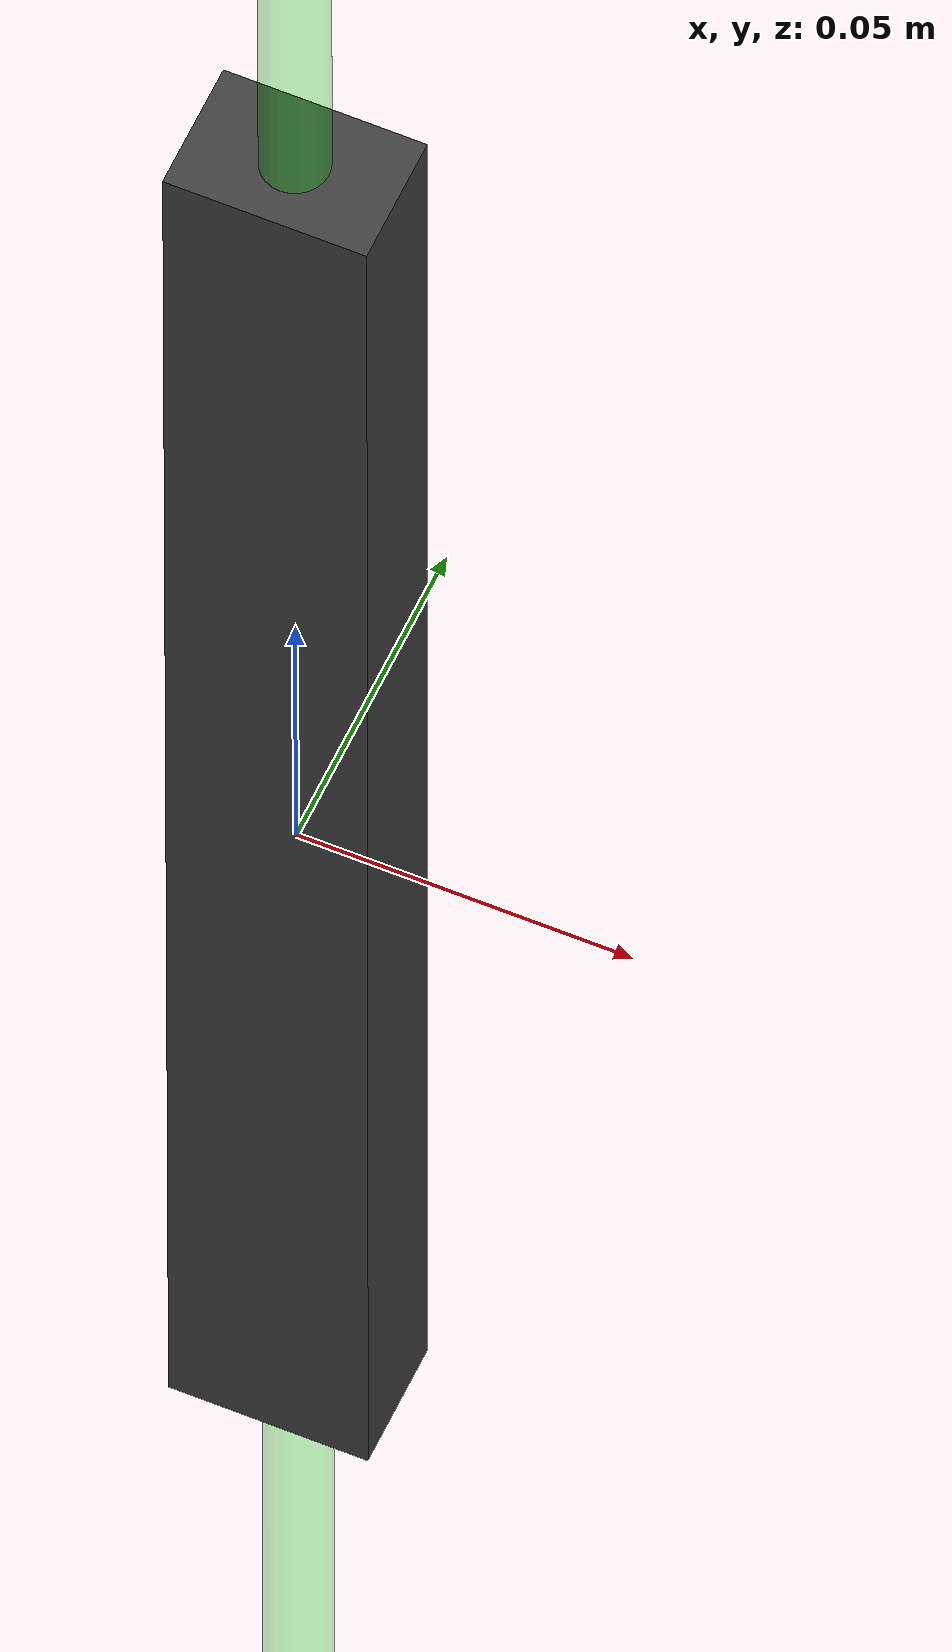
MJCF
<mujoco model="box_hand">
    <worldbody>
        <body name="box_gripper" pos="0 0 0.015" quat="0.707107 0 0 -0.707107" >
            <site name="ft_frame" pos="0 0 0" size="0.01 0.01 0.01" rgba="1 0 0 1" type="sphere" group="1"/>
            <inertial pos="0 0 0" mass="1.3" diaginertia="0.09 0.07 0.05"/>

            <geom type="box" pos="0 0 0.0" size="0.01 0.015 0.145" name="wiping_surface_vis" contype="0" conaffinity="0" group="1" rgba="0.25 0.25 0.25 1" />

            <geom type="sphere" group="0" pos="0.005 0.0075 0.045" size="0.001" name="wiping_corner1" solimp="0.0 0.1 0.01" solmix="10000" solref="1 2" rgba="0.25 0.25 0.25 1" friction="0.001 0.005 0.0001"/>
            <site type="sphere" pos="0.005 0.0075 0.045" size="0.001" name="wiping_corner1_site"/>

            <geom type="sphere" group="0" pos="-0.005 0.0075 0.045" size="0.001" name="wiping_corner2" solimp="0.0 0.1 0.01" solmix="10000" solref="1 2" rgba="0.25 0.25 0.25 1" friction="0.001 0.005 0.0001"/>
            <site type="sphere" pos="-0.005 0.0075 0.045" size="0.001" name="wiping_corner2_site"/>

            <geom type="sphere" group="0" pos="0.005 -0.0075 0.045" size="0.001" name="wiping_corner3" solimp="0.0 0.1 0.01" solmix="10000" solref="1 2" rgba="0.25 0.25 0.25 1" friction="0.001 0.005 0.0001"/>
            <site type="sphere" pos="0.005 -0.0075 0.045" size="0.001" name="wiping_corner3_site"/>

            <geom type="sphere" group="0" pos="-0.005 -0.0075 0.045" size="0.001" name="wiping_corner4" solimp="0.0 0.1 0.01" solmix="10000" solref="1 2" rgba="0.25 0.25 0.25 1" friction="0.001 0.005 0.0001"/>
            <site type="sphere" pos="-0.005 -0.0075 0.045" size="0.001" name="wiping_corner4_site"/>

            <!-- This site was added for visualization. -->
            <body name="eef" pos="0 0 0.015" quat="1 0 0 0">
                <site name="grip_site" pos="0 0 0" size="0.01 0.01 0.01" rgba="1 0 0 0.5" type="sphere" group="1"/>
                <site name="ee_x" pos="0.1 0 0" size="0.005 .1"  quat="0.707105  0 0.707108 0 " rgba="1 0 0 0" type="cylinder" group="1"/>
                <site name="ee_y" pos="0 0.1 0" size="0.005 .1" quat="0.707105 0.707108 0 0" rgba="0 1 0 0" type="cylinder" group="1"/>
                <site name="ee_z" pos="0 0 0.1" size="0.005 .1" quat="1 0 0 0" rgba="0 0 1 0" type="cylinder" group="1"/>
                <!-- This site was added for visualization. -->
                <site name="grip_site_cylinder" pos="0 0 0" size="0.005 10" rgba="0 1 0 0.3" type="cylinder" group="1"/>
            </body>
        </body>
    </worldbody>
    <sensor>
        <force name="force_ee" site="ft_frame"/>
        <torque name="torque_ee" site="ft_frame"/>
        <touch name="touch1" site="wiping_corner1_site"/>
        <touch name="touch2" site="wiping_corner2_site"/>
        <touch name="touch3" site="wiping_corner3_site"/>
        <touch name="touch4" site="wiping_corner4_site"/>
    </sensor>
</mujoco>
